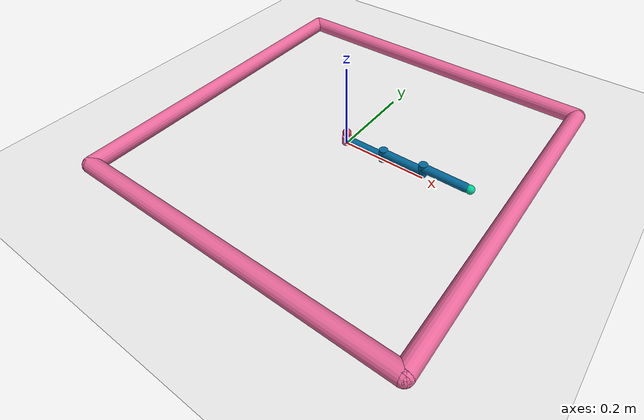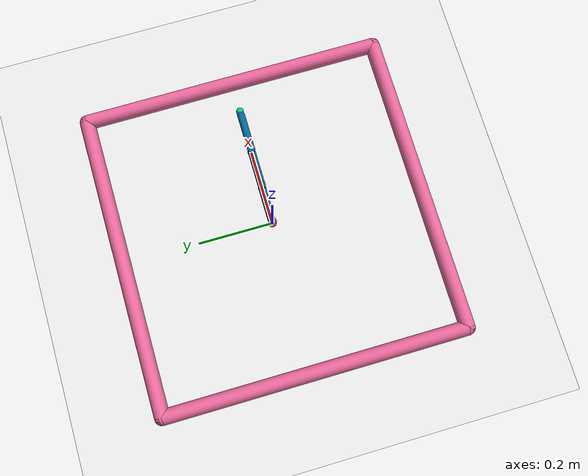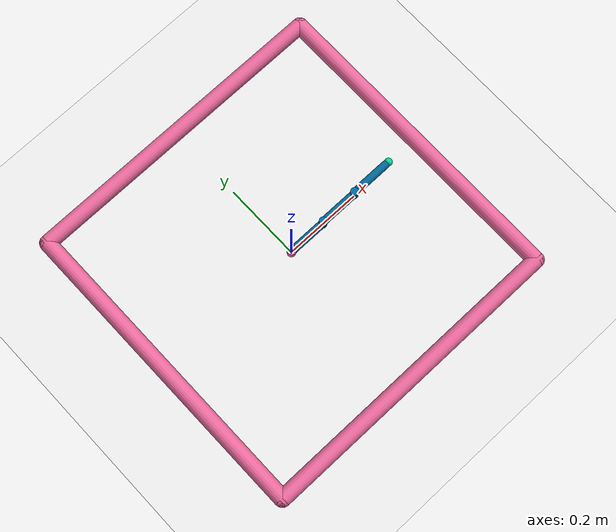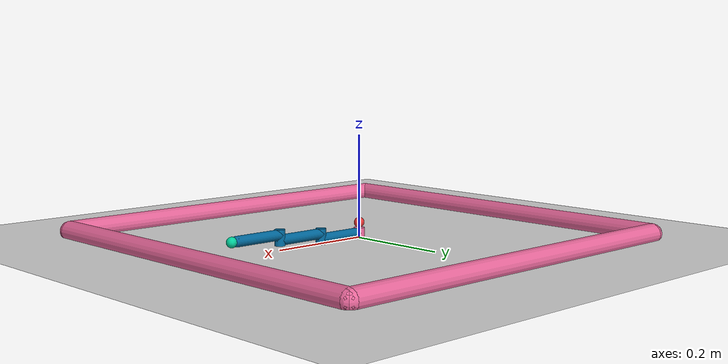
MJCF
<mujoco model="three_linked_reacher">
    <compiler angle="radian" coordinate="local" inertiafromgeom="true"/>
    <default>
        <joint armature="1" damping=".3" axis="0 0 1" />
        <geom contype="0" conaffinity="0" friction="1 0.1 0.1" rgba="0.7 0.7 0 1"/>
        <motor ctrllimited="true" ctrlrange="-1 1" gear="5.0"/>
    </default>
    <option gravity="0 0 -9.81" integrator="RK4" timestep="0.01"/>
    <visual>
        <map znear="0.02"/>
    </visual>
    <worldbody>
        <!-- Arena -->
        <geom conaffinity="0" contype="0" name="ground" pos="0 0 0" rgba="0.9 0.9 0.9 1" size="1 1 10" type="plane"/>
        <geom conaffinity="0" fromto="-.4 -.4 .01 .4 -.4 .01" name="sideS" rgba="0.9 0.4 0.6 1" size=".02" type="capsule"/>
        <geom conaffinity="0" fromto=" .4 -.4 .01 .4  .4 .01" name="sideE" rgba="0.9 0.4 0.6 1" size=".02" type="capsule"/>
		<geom conaffinity="0" fromto="-.4  .4 .01 .4  .4 .01" name="sideN" rgba="0.9 0.4 0.6 1" size=".02" type="capsule"/>
		<geom conaffinity="0" fromto="-.4 -.4 .01 -.4 .4 .01" name="sideW" rgba="0.9 0.4 0.6 1" size=".02" type="capsule"/>
        <!-- Arm -->
        <geom fromto="0 0 0 0 0 0.02" name="root" rgba="0.9 0.4 0.6 1" size=".011" type="cylinder" />
        <body name="body0" pos="0 0 .01">
			<geom fromto="0 0 0 0.1 0 0" name="link0" rgba="0.0 0.4 0.6 1" size=".01" type="capsule"/>
			<joint limited="false" name="joint0" pos="0 0 0" type="hinge"/>
            <geom fromto="0.1 0 -0.01 0.1 0 0.02" name="root_1" rgba="0.0 0.4 0.6 1" size=".01" type="cylinder" />
            <body name="body1" pos="0.1 0 0.01">
                <joint limited="true" range="-2.8 2.8" name="joint1" pos="0 0 0" type="hinge"/>
                <geom fromto="0 0 0 0.1 0 0" name="link1" rgba="0.0 0.4 0.6 1" size=".01" type="capsule"/>
                <geom fromto="0.1 0 -0.01 0.1 0 0.02" name="root_2" rgba="0.0 0.4 0.6 1" size=".01" type="cylinder" />
                <body name="body2" pos="0.1 0 0.01">
                    <joint limited="true" range="-2.8 2.8" name="joint2" pos="0 0 0" type="hinge"/>
                    <geom fromto="0 0 0 0.1 0 0" name="link2" rgba="0.0 0.4 0.6 1" size=".01" type="capsule"/>
                    <body name="fingertip" pos="0.11 0 0">
                        <geom contype="0" name="fingertip" pos="0 0 0" rgba="0.0 0.8 0.6 1" size=".01" type="sphere"/>
                    </body>
                </body>
            </body>
		</body>
        <!-- Target -->
		<body name="target" pos="0 0 .03">
            <joint armature="0" axis="1 0 0" damping="0" limited="false" name="target_x" pos="0 0 0.03" range="-1 1" ref="0" stiffness="0" type="slide"/>
			<joint armature="0" axis="0 1 0" damping="0" limited="false" name="target_y" pos="0 0 0.03" range="-1 1" ref="0" stiffness="0" type="slide"/>
			<geom conaffinity="0" contype="0" name="target" pos="0 0 0" rgba="0.9 0.2 0.2 1" size=".01" type="sphere"/>
		</body>
    </worldbody>
    <actuator>
        <motor name="joint0" joint="joint0"/>
        <motor name="joint1" joint="joint1"/>
        <motor name="joint2" joint="joint2"/>
    </actuator>
</mujoco>
